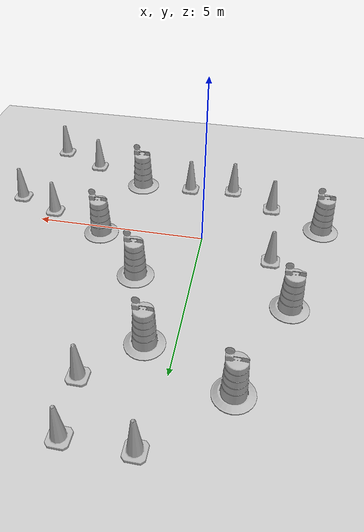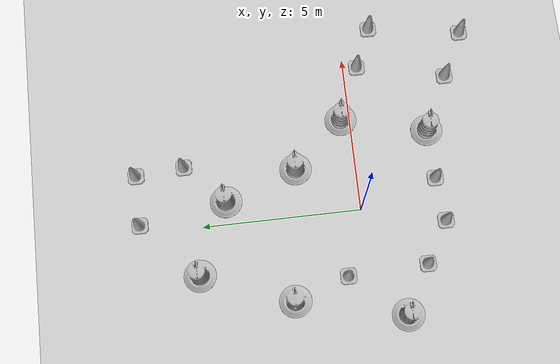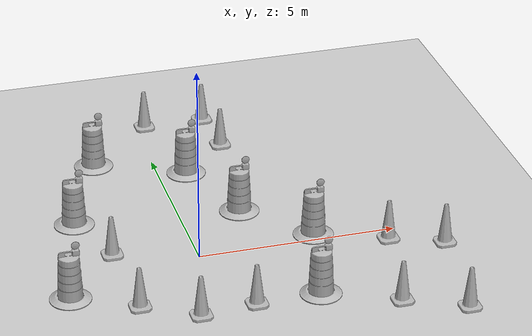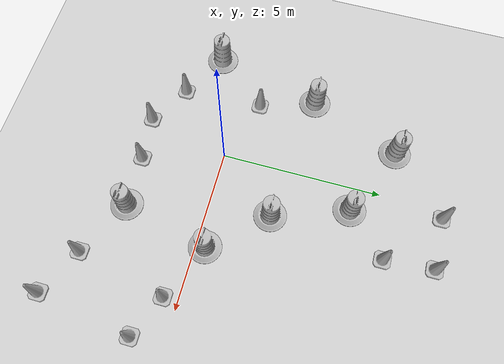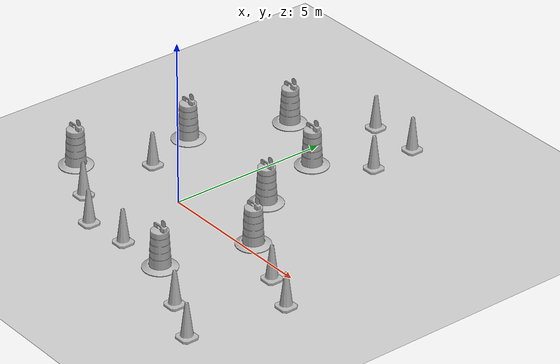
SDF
<sdf version="1.7">
 <world name="default">
  <light name="sun" type="directional">
   <pose>0 0 10 0 -0 0</pose>
   <diffuse>0.8 0.8 0.8 1</diffuse>
   <specular>0.2 0.2 0.2 1</specular>
   <attenuation>
    <range>1000</range>
    <constant>0.9</constant>
    <linear>0.01</linear>
    <quadratic>0.001</quadratic>
   </attenuation>
   <direction>-0.5 0.1 -0.9</direction>
   <spot><inner_angle>0</inner_angle><outer_angle>0</outer_angle><falloff>0</falloff></spot>
  </light>
  <model name="ground_plane">
   <static>1</static>
   <link name="link">
    <collision name="collision">
     <geometry><plane><normal>0 0 1</normal><size>100 100</size></plane></geometry>
     <surface>
      <contact><collide_bitmask>65535</collide_bitmask></contact>
      <friction><ode><mu>100</mu><mu2>50</mu2></ode></friction>
     </surface>
    </collision>
    <visual name="visual">
     <cast_shadows>0</cast_shadows>
     <geometry><plane><normal>0 0 1</normal><size>100 100</size></plane></geometry>
     <material>
      <script><uri>file://media/materials/scripts/gazebo.material</uri><name>Gazebo/Grey</name></script>
     </material>
    </visual>
   </link>
  </model>
  <gravity>0 0 -9.8</gravity>
  <magnetic_field>6e-06 2.3e-05 -4.2e-05</magnetic_field>
  <atmosphere type="adiabatic"/>
  <physics type="ode">
   <max_step_size>0.001</max_step_size>
   <real_time_factor>1</real_time_factor>
   <real_time_update_rate>1000</real_time_update_rate>
  </physics>
  <scene><ambient>0.4 0.4 0.4 1</ambient><background>0.7 0.7 0.7 1</background><shadows>1</shadows></scene>
  <spherical_coordinates>
   <surface_model>EARTH_WGS84</surface_model>
   <latitude_deg>0</latitude_deg>
   <longitude_deg>0</longitude_deg>
   <elevation>0</elevation>
   <heading_deg>0</heading_deg>
  </spherical_coordinates>
  <model name="Construction Barrel">
   <link name="link">
    <inertial>
     <pose>0 0 0.4 0 -0 0</pose>
     <mass>500</mass>
     <inertia><ixx>51.2096</ixx><iyy>51.2096</iyy><izz>25</izz><ixy>0</ixy><ixz>0</ixz><iyz>0</iyz></inertia>
    </inertial>
    <collision name="collision">
     <geometry><mesh><uri>model://construction_barrel/meshes/construction_barrel.dae</uri></mesh></geometry>
    </collision>
    <visual name="visual">
     <geometry><mesh><uri>model://construction_barrel/meshes/construction_barrel.dae</uri></mesh></geometry>
    </visual>
   </link>
   <pose>-3.41556 -1.03183 -1e-06 3e-06 -0 -2.8e-05</pose>
  </model>
  <model name="Construction Cone">
   <link name="link">
    <collision name="collision">
     <geometry>
      <mesh><scale>10 10 10</scale><uri>model://construction_cone/meshes/construction_cone.dae</uri></mesh>
     </geometry>
    </collision>
    <visual name="visual">
     <geometry>
      <mesh><scale>10 10 10</scale><uri>model://construction_cone/meshes/construction_cone.dae</uri></mesh>
     </geometry>
    </visual>
    <inertial>
     <inertia><ixx>1</ixx><ixy>0</ixy><ixz>0</ixz><iyy>1</iyy><iyz>0</iyz><izz>1</izz></inertia>
     <mass>1</mass>
    </inertial>
   </link>
   <pose>-0.62904 -2.60542 -9e-06 3e-06 -0 0</pose>
  </model>
  <model name="Construction Cone_clone_0">
   <link name="link">
    <collision name="collision">
     <geometry>
      <mesh><scale>10 10 10</scale><uri>model://construction_cone/meshes/construction_cone.dae</uri></mesh>
     </geometry>
    </collision>
    <visual name="visual">
     <geometry>
      <mesh><scale>10 10 10</scale><uri>model://construction_cone/meshes/construction_cone.dae</uri></mesh>
     </geometry>
    </visual>
    <inertial>
     <inertia><ixx>1</ixx><ixy>0</ixy><ixz>0</ixz><iyy>1</iyy><iyz>0</iyz><izz>1</izz></inertia>
     <mass>1</mass>
    </inertial>
   </link>
   <pose>0.760763 -2.46899 -1e-05 -0 -0 -0</pose>
  </model>
  <model name="Construction Barrel_clone_0">
   <link name="link">
    <inertial>
     <pose>0 0 0.4 0 -0 0</pose>
     <mass>500</mass>
     <inertia><ixx>51.2096</ixx><iyy>51.2096</iyy><izz>25</izz><ixy>0</ixy><ixz>0</ixz><iyz>0</iyz></inertia>
    </inertial>
    <collision name="collision">
     <geometry><mesh><uri>model://construction_barrel/meshes/construction_barrel.dae</uri></mesh></geometry>
    </collision>
    <visual name="visual">
     <geometry><mesh><uri>model://construction_barrel/meshes/construction_barrel.dae</uri></mesh></geometry>
    </visual>
   </link>
   <pose>2.99543 0.283475 -4e-06 -5e-06 -7e-06 -3.1e-05</pose>
  </model>
  <model name="Construction Barrel_clone_1">
   <link name="link">
    <inertial>
     <pose>0 0 0.4 0 -0 0</pose>
     <mass>500</mass>
     <inertia><ixx>51.2096</ixx><iyy>51.2096</iyy><izz>25</izz><ixy>0</ixy><ixz>0</ixz><iyz>0</iyz></inertia>
    </inertial>
    <collision name="collision">
     <geometry><mesh><uri>model://construction_barrel/meshes/construction_barrel.dae</uri></mesh></geometry>
    </collision>
    <visual name="visual">
     <geometry><mesh><uri>model://construction_barrel/meshes/construction_barrel.dae</uri></mesh></geometry>
    </visual>
   </link>
   <pose>1.53714 1.90482 -4e-06 -5e-06 -7e-06 -3.3e-05</pose>
  </model>
  <model name="Construction Barrel_clone_2">
   <link name="link">
    <inertial>
     <pose>0 0 0.4 0 -0 0</pose>
     <mass>500</mass>
     <inertia><ixx>51.2096</ixx><iyy>51.2096</iyy><izz>25</izz><ixy>0</ixy><ixz>0</ixz><iyz>0</iyz></inertia>
    </inertial>
    <collision name="collision">
     <geometry><mesh><uri>model://construction_barrel/meshes/construction_barrel.dae</uri></mesh></geometry>
    </collision>
    <visual name="visual">
     <geometry><mesh><uri>model://construction_barrel/meshes/construction_barrel.dae</uri></mesh></geometry>
    </visual>
   </link>
   <pose>-1.50764 5.21487 -4e-06 -5e-06 -7e-06 -3.2e-05</pose>
  </model>
  <model name="Construction Barrel_clone_3">
   <link name="link">
    <inertial>
     <pose>0 0 0.4 0 -0 0</pose>
     <mass>500</mass>
     <inertia><ixx>51.2096</ixx><iyy>51.2096</iyy><izz>25</izz><ixy>0</ixy><ixz>0</ixz><iyz>0</iyz></inertia>
    </inertial>
    <collision name="collision">
     <geometry><mesh><uri>model://construction_barrel/meshes/construction_barrel.dae</uri></mesh></geometry>
    </collision>
    <visual name="visual">
     <geometry><mesh><uri>model://construction_barrel/meshes/construction_barrel.dae</uri></mesh></geometry>
    </visual>
   </link>
   <pose>-2.61861 2.36373 -1e-06 3e-06 -0 -2.8e-05</pose>
  </model>
  <model name="Construction Barrel_clone_4">
   <link name="link">
    <inertial>
     <pose>0 0 0.4 0 -0 0</pose>
     <mass>500</mass>
     <inertia><ixx>51.2096</ixx><iyy>51.2096</iyy><izz>25</izz><ixy>0</ixy><ixz>0</ixz><iyz>0</iyz></inertia>
    </inertial>
    <collision name="collision">
     <geometry><mesh><uri>model://construction_barrel/meshes/construction_barrel.dae</uri></mesh></geometry>
    </collision>
    <visual name="visual">
     <geometry><mesh><uri>model://construction_barrel/meshes/construction_barrel.dae</uri></mesh></geometry>
    </visual>
   </link>
   <pose>0.73447 4.19908 0 0 0 -3.1e-05</pose>
  </model>
  <model name="Construction Cone_clone_clone">
   <link name="link">
    <collision name="collision">
     <geometry>
      <mesh><scale>10 10 10</scale><uri>model://construction_cone/meshes/construction_cone.dae</uri></mesh>
     </geometry>
    </collision>
    <visual name="visual">
     <geometry>
      <mesh><scale>10 10 10</scale><uri>model://construction_cone/meshes/construction_cone.dae</uri></mesh>
     </geometry>
    </visual>
    <inertial>
     <inertia><ixx>1</ixx><ixy>0</ixy><ixz>0</ixz><iyy>1</iyy><iyz>0</iyz><izz>1</izz></inertia>
     <mass>1</mass>
    </inertial>
   </link>
   <pose>-2.03074 0.648489 -0 0 -0 0</pose>
  </model>
  <model name="Construction Cone_clone_clone_1">
   <link name="link">
    <collision name="collision">
     <geometry>
      <mesh><scale>10 10 10</scale><uri>model://construction_cone/meshes/construction_cone.dae</uri></mesh>
     </geometry>
    </collision>
    <visual name="visual">
     <geometry>
      <mesh><scale>10 10 10</scale><uri>model://construction_cone/meshes/construction_cone.dae</uri></mesh>
     </geometry>
    </visual>
    <inertial>
     <inertia><ixx>1</ixx><ixy>0</ixy><ixz>0</ixz><iyy>1</iyy><iyz>0</iyz><izz>1</izz></inertia>
     <mass>1</mass>
    </inertial>
   </link>
   <pose>4.71416 -0.453108 -0 0 -0 0</pose>
  </model>
  <model name="Construction Cone_clone_clone_4">
   <link name="link">
    <collision name="collision">
     <geometry>
      <mesh><scale>10 10 10</scale><uri>model://construction_cone/meshes/construction_cone.dae</uri></mesh>
     </geometry>
    </collision>
    <visual name="visual">
     <geometry>
      <mesh><scale>10 10 10</scale><uri>model://construction_cone/meshes/construction_cone.dae</uri></mesh>
     </geometry>
    </visual>
    <inertial>
     <inertia><ixx>1</ixx><ixy>0</ixy><ixz>0</ixz><iyy>1</iyy><iyz>0</iyz><izz>1</izz></inertia>
     <mass>1</mass>
    </inertial>
   </link>
   <pose>6 -1 -0 0 -1e-06 0</pose>
  </model>
  <model name="Construction Barrel_clone_0_clone">
   <link name="link">
    <inertial>
     <pose>0 0 0.4 0 -0 0</pose>
     <mass>500</mass>
     <inertia><ixx>51.2096</ixx><iyy>51.2096</iyy><izz>25</izz><ixy>0</ixy><ixz>0</ixz><iyz>0</iyz></inertia>
    </inertial>
    <collision name="collision">
     <geometry><mesh><uri>model://construction_barrel/meshes/construction_barrel.dae</uri></mesh></geometry>
    </collision>
    <visual name="visual">
     <geometry><mesh><uri>model://construction_barrel/meshes/construction_barrel.dae</uri></mesh></geometry>
    </visual>
   </link>
   <pose>2.35397 -2.41753 -1e-06 3e-06 -0 -3.1e-05</pose>
  </model>
  <model name="Construction Cone_clone_clone_3_clone">
   <link name="link">
    <collision name="collision">
     <geometry>
      <mesh><scale>10 10 10</scale><uri>model://construction_cone/meshes/construction_cone.dae</uri></mesh>
     </geometry>
    </collision>
    <visual name="visual">
     <geometry>
      <mesh><scale>10 10 10</scale><uri>model://construction_cone/meshes/construction_cone.dae</uri></mesh>
     </geometry>
    </visual>
    <inertial>
     <inertia><ixx>1</ixx><ixy>0</ixy><ixz>0</ixz><iyy>1</iyy><iyz>0</iyz><izz>1</izz></inertia>
     <mass>1</mass>
    </inertial>
   </link>
   <pose>4.10747 -3.25553 -0 0 -0 0</pose>
  </model>
  <model name="Construction Cone_clone_clone_3_clone_clone">
   <link name="link">
    <collision name="collision">
     <geometry>
      <mesh><scale>10 10 10</scale><uri>model://construction_cone/meshes/construction_cone.dae</uri></mesh>
     </geometry>
    </collision>
    <visual name="visual">
     <geometry>
      <mesh><scale>10 10 10</scale><uri>model://construction_cone/meshes/construction_cone.dae</uri></mesh>
     </geometry>
    </visual>
    <inertial>
     <inertia><ixx>1</ixx><ixy>0</ixy><ixz>0</ixz><iyy>1</iyy><iyz>0</iyz><izz>1</izz></inertia>
     <mass>1</mass>
    </inertial>
   </link>
   <pose>5.54435 -3.95883 0 -1e-06 0 0</pose>
  </model>
  <model name="Construction Cone_clone_clone_5_clone">
   <link name="link">
    <collision name="collision">
     <geometry>
      <mesh><scale>10 10 10</scale><uri>model://construction_cone/meshes/construction_cone.dae</uri></mesh>
     </geometry>
    </collision>
    <visual name="visual">
     <geometry>
      <mesh><scale>10 10 10</scale><uri>model://construction_cone/meshes/construction_cone.dae</uri></mesh>
     </geometry>
    </visual>
    <inertial>
     <inertia><ixx>1</ixx><ixy>0</ixy><ixz>0</ixz><iyy>1</iyy><iyz>0</iyz><izz>1</izz></inertia>
     <mass>1</mass>
    </inertial>
   </link>
   <pose>-1.91968 -1.85156 -0 0 -0 0</pose>
  </model>
  <model name="Construction Cone_clone_clone_5_clone_0">
   <link name="link">
    <collision name="collision">
     <geometry>
      <mesh><scale>10 10 10</scale><uri>model://construction_cone/meshes/construction_cone.dae</uri></mesh>
     </geometry>
    </collision>
    <visual name="visual">
     <geometry>
      <mesh><scale>10 10 10</scale><uri>model://construction_cone/meshes/construction_cone.dae</uri></mesh>
     </geometry>
    </visual>
    <inertial>
     <inertia><ixx>1</ixx><ixy>0</ixy><ixz>0</ixz><iyy>1</iyy><iyz>0</iyz><izz>1</izz></inertia>
     <mass>1</mass>
    </inertial>
   </link>
   <pose>1.98693 5.42787 -0 0 -1e-06 0</pose>
  </model>
  <model name="Construction Cone_clone_clone_5_clone_1">
   <link name="link">
    <collision name="collision">
     <geometry>
      <mesh><scale>10 10 10</scale><uri>model://construction_cone/meshes/construction_cone.dae</uri></mesh>
     </geometry>
    </collision>
    <visual name="visual">
     <geometry>
      <mesh><scale>10 10 10</scale><uri>model://construction_cone/meshes/construction_cone.dae</uri></mesh>
     </geometry>
    </visual>
    <inertial>
     <inertia><ixx>1</ixx><ixy>0</ixy><ixz>0</ixz><iyy>1</iyy><iyz>0</iyz><izz>1</izz></inertia>
     <mass>1</mass>
    </inertial>
   </link>
   <pose>0.272075 6.94913 -8e-06 1e-06 -0 0</pose>
  </model>
  <model name="Construction Cone_clone_clone_5_clone_2">
   <link name="link">
    <collision name="collision">
     <geometry>
      <mesh><scale>10 10 10</scale><uri>model://construction_cone/meshes/construction_cone.dae</uri></mesh>
     </geometry>
    </collision>
    <visual name="visual">
     <geometry>
      <mesh><scale>10 10 10</scale><uri>model://construction_cone/meshes/construction_cone.dae</uri></mesh>
     </geometry>
    </visual>
    <inertial>
     <inertia><ixx>1</ixx><ixy>0</ixy><ixz>0</ixz><iyy>1</iyy><iyz>0</iyz><izz>1</izz></inertia>
     <mass>1</mass>
    </inertial>
   </link>
   <pose>1.87143 6.95967 -9e-06 -2e-06 -0 -0</pose>
  </model>
 </world>
</sdf>
